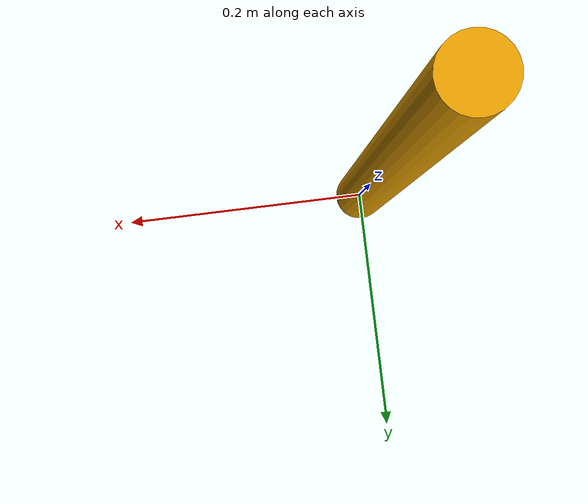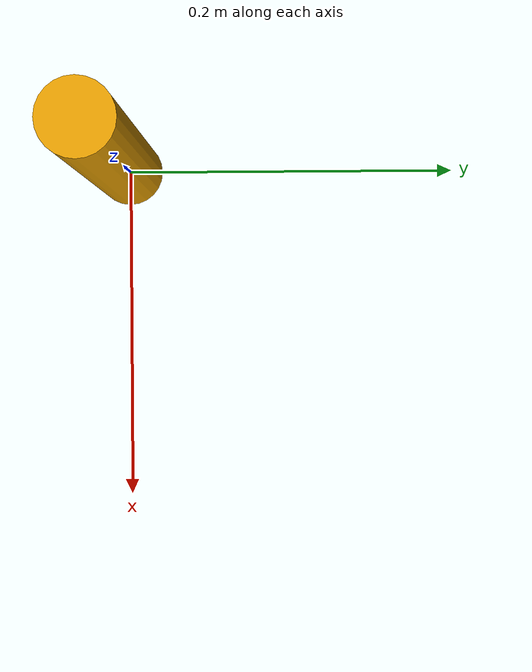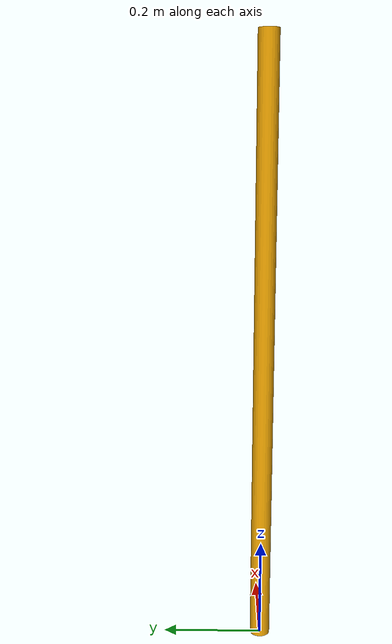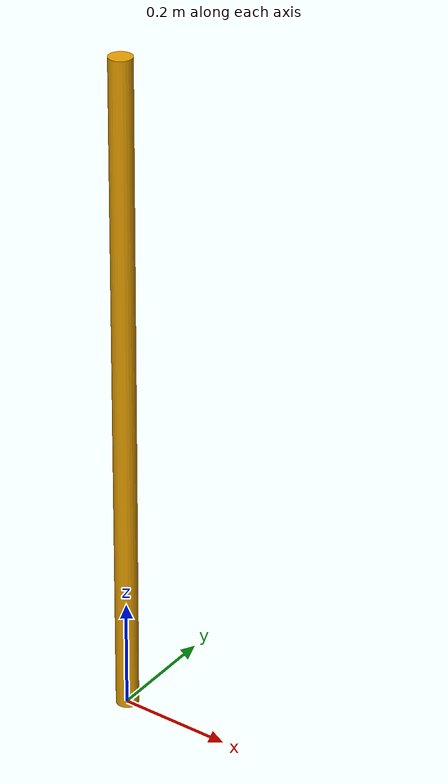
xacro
<?xml version="1.0"?>
<robot name="table"
       xmlns:xi="http://www.w3.org/2001/XInclude"
       xmlns:gazebo="http://playerstage.sourceforge.net/gazebo/xmlschema/#gz"
       xmlns:model="http://playerstage.sourceforge.net/gazebo/xmlschema/#model"
       xmlns:sensor="http://playerstage.sourceforge.net/gazebo/xmlschema/#sensor"
       xmlns:body="http://playerstage.sourceforge.net/gazebo/xmlschema/#body"
       xmlns:geom="http://playerstage.sourceforge.net/gazebo/xmlschema/#geom"
       xmlns:joint="http://playerstage.sourceforge.net/gazebo/xmlschema/#joint"
       xmlns:interface="http://playerstage.sourceforge.net/gazebo/xmlschema/#interface"
       xmlns:rendering="http://playerstage.sourceforge.net/gazebo/xmlschema/#rendering"
       xmlns:renderable="http://playerstage.sourceforge.net/gazebo/xmlschema/#renderable"
       xmlns:controller="http://playerstage.sourceforge.net/gazebo/xmlschema/#controller"
       xmlns:physics="http://playerstage.sourceforge.net/gazebo/xmlschema/#physics">

  <property name="table_z" value="0.0" />
  <property name="table_height" value="0.55" />

  <property name="object_1_x" value="0.0" />
  <property name="object_1_y" value="0.0" />

  <property name="object_1_height"      value="1.2" />
  <property name="object_1_radius"      value="0.02" />
  <property name="object_1_base_height" value="0.02" />
  <property name="object_1_base_width"  value="0.15" />
  <property name="object_1_mass"        value="0.2" />
  <property name="object_1_mu"          value="500.0" />

  <link name="stick">
    <inertial>
      <mass value="${object_1_mass/2.0}" />
      <origin xyz="0 0 ${object_1_height/2}" />
      <inertia ixx="${object_1_mass/20.0}" ixy="0"  ixz="0"
               iyy="${object_1_mass/20.0}" iyz="0"
               izz="${object_1_mass/200.}" />
    </inertial>
    <visual>
      <origin xyz="0.0 0.0 ${object_1_height/2}" rpy="0 0 0" />
      <geometry>
        <cylinder radius="${object_1_radius}" length="${object_1_height}" />
      </geometry>
    </visual>
    <collision>
      <origin xyz="0.0 0.0 ${object_1_height/2}" rpy="0.0 0.0 0.0" />
      <geometry>
        <cylinder radius="${object_1_radius}" length="${object_1_height}" />
      </geometry>
    </collision>
  </link>
  <gazebo reference="stick">
    <material>Gazebo/BumpyMetal</material>
    <mu1>${object_1_mu}</mu1>
    <mu2>${object_1_mu}</mu2>
    <kp>100000000.0</kp>
    <kd>1.0</kd>
    <selfCollide>true</selfCollide>
    <turnGravityOff>true</turnGravityOff>
    <dampingFactor>0.001</dampingFactor>
  </gazebo>
</robot>
